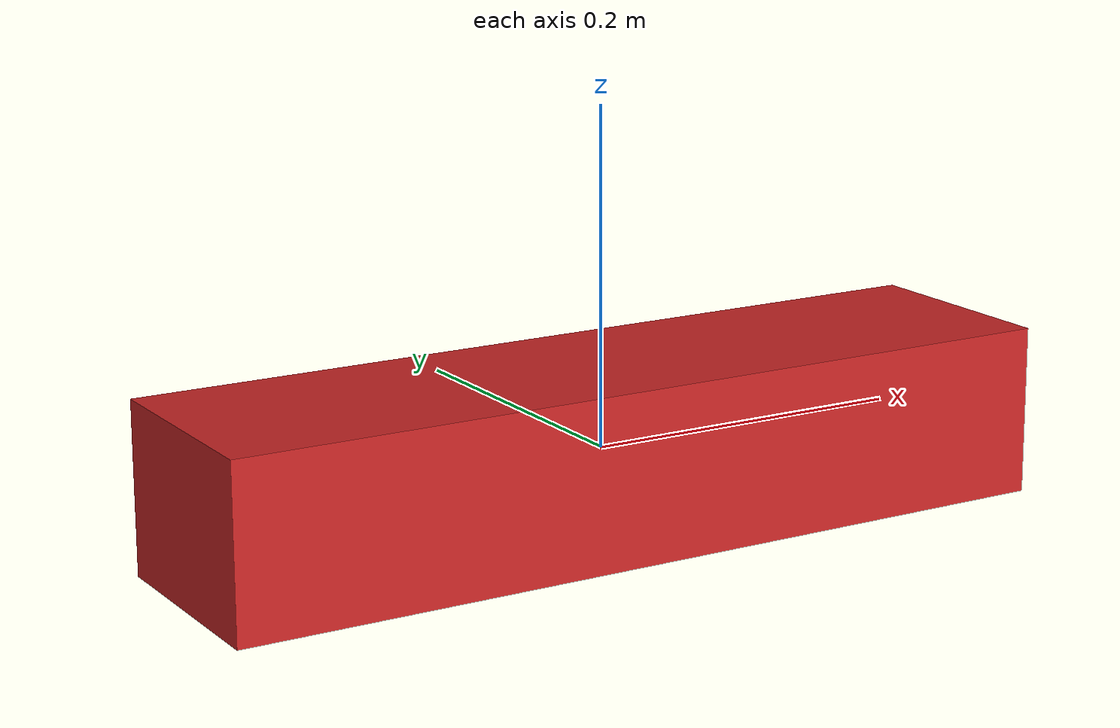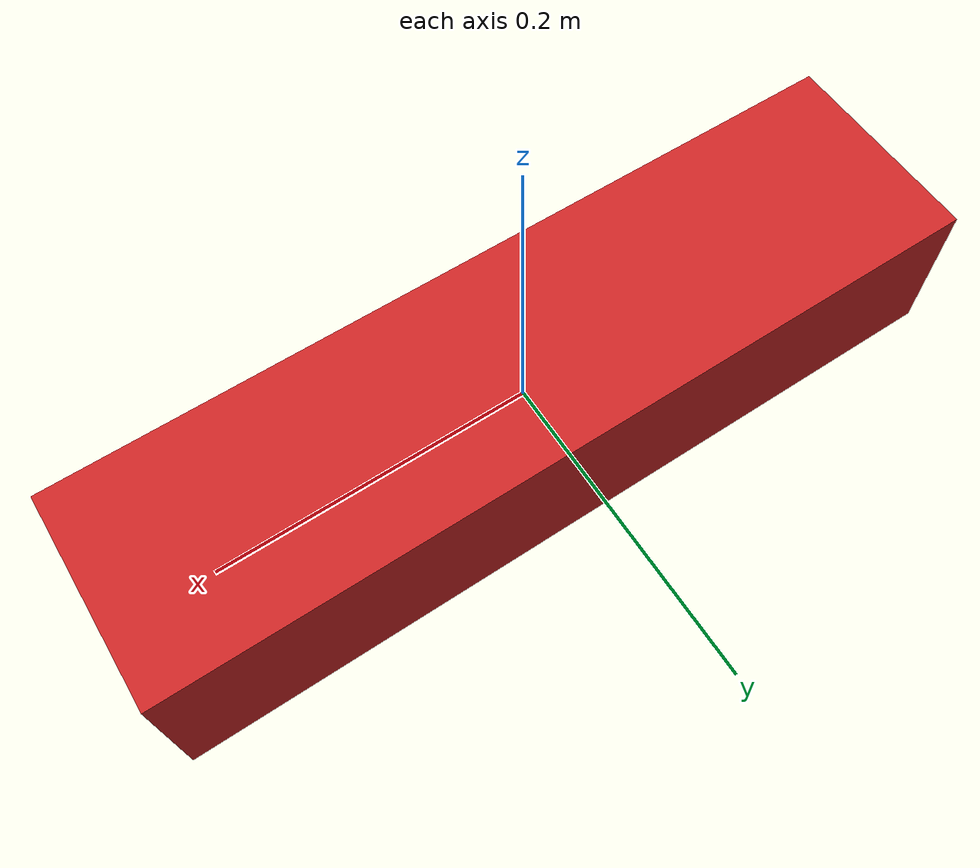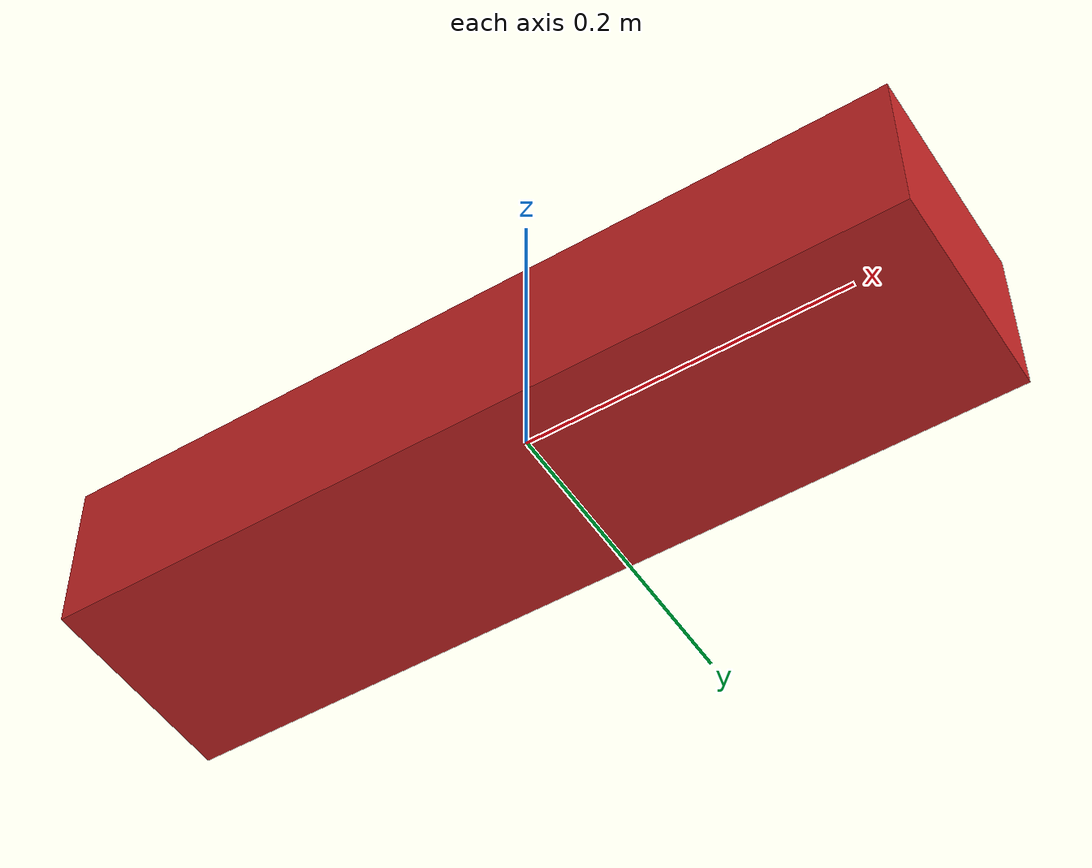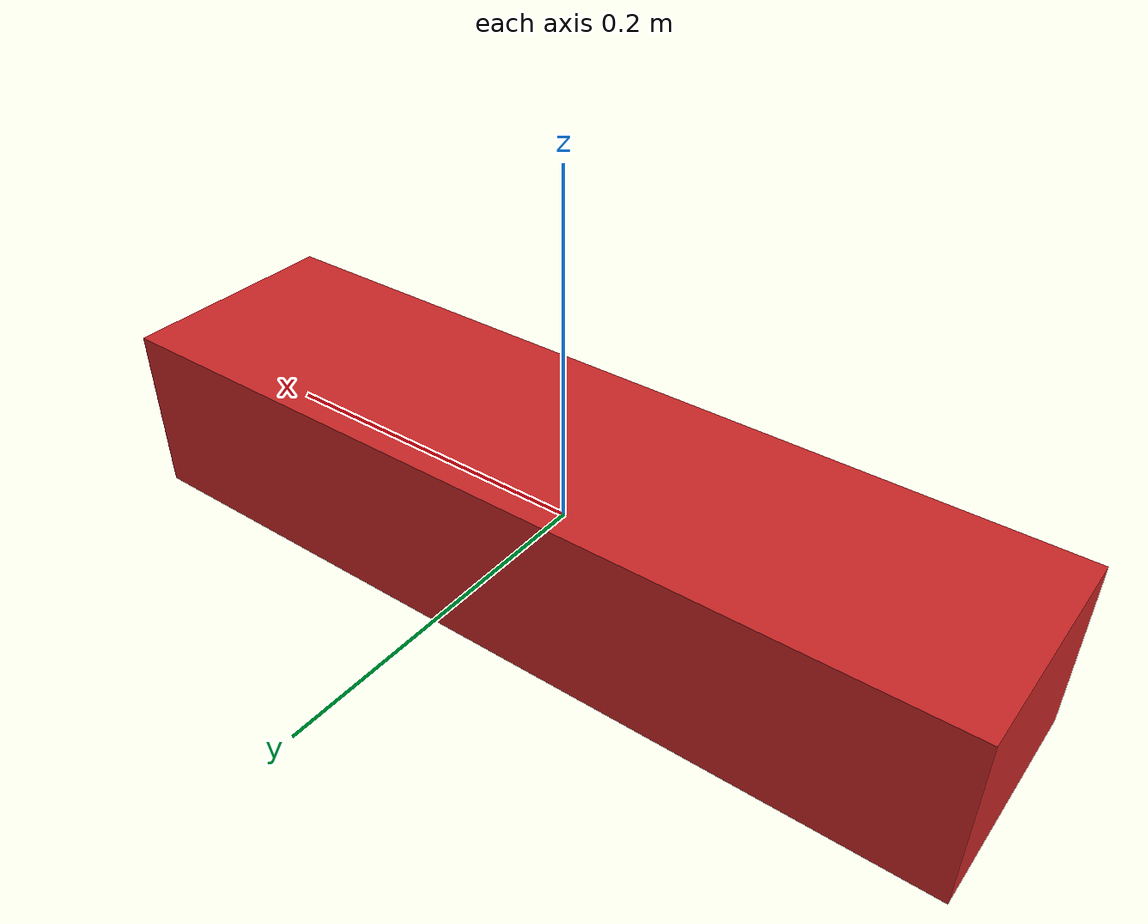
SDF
<?xml version='1.0'?>
<sdf version='1.7'>
  <model name='camera'>
    <link name='link_0'>

      <inertial>
        <mass>0.00707571</mass>
        <inertia>
          <ixx>1.66494e-05</ixx>
          <ixy>0</ixy>
          <ixz>0</ixz>
          <iyy>0.000165453</iyy>
          <iyz>0</iyz>
          <izz>0.000169817</izz>
        </inertia>
        <pose>0 0 0 0 -0 0</pose>
      </inertial>
      <pose>-0 -0 0 0 -0 0</pose>
      <visual name='visual'>
        <pose>0 0 0 0 -0 0</pose>
        <geometry>
          <box>
            <size>0.519789 0.133487 0.102067</size>
          </box>
        </geometry>
        <material>
          <lighting>1</lighting>
          <script>
            <uri>file://media/materials/scripts/gazebo.material</uri>
            <name>Gazebo/Red</name>
          </script>
          <shader type='pixel'/>
        </material>
        <transparency>0</transparency>
        <cast_shadows>1</cast_shadows>
      </visual>
      <collision name='collision'>
        <laser_retro>0</laser_retro>
        <max_contacts>10</max_contacts>
        <pose>0 0 0 0 -0 0</pose>
        <geometry>
          <box>
            <size>0.519789 0.133487 0.102067</size>
          </box>
        </geometry>
        <surface>
          <friction>
            <ode>
              <mu>1</mu>
              <mu2>1</mu2>
              <fdir1>0 0 0</fdir1>
              <slip1>0</slip1>
              <slip2>0</slip2>
            </ode>
            <torsional>
              <coefficient>1</coefficient>
              <patch_radius>0</patch_radius>
              <surface_radius>0</surface_radius>
              <use_patch_radius>1</use_patch_radius>
              <ode>
                <slip>0</slip>
              </ode>
            </torsional>
          </friction>
          <bounce>
            <restitution_coefficient>0</restitution_coefficient>
            <threshold>1e+06</threshold>
          </bounce>
          <contact>
            <collide_without_contact>0</collide_without_contact>
            <collide_without_contact_bitmask>1</collide_without_contact_bitmask>
            <collide_bitmask>1</collide_bitmask>
            <ode>
              <soft_cfm>0</soft_cfm>
              <soft_erp>0.2</soft_erp>
              <kp>1e+13</kp>
              <kd>1</kd>
              <max_vel>0.01</max_vel>
              <min_depth>0</min_depth>
            </ode>
            <bullet>
              <split_impulse>1</split_impulse>
              <split_impulse_penetration_threshold>-0.01</split_impulse_penetration_threshold>
              <soft_cfm>0</soft_cfm>
              <soft_erp>0.2</soft_erp>
              <kp>1e+13</kp>
              <kd>1</kd>
            </bullet>
          </contact>
        </surface>
      </collision>

    <sensor name='camera' type='camera'>
      <pose> 0 0 0 0 1.57 0</pose>
        <always_on>1</always_on>
        <visualize>1</visualize>
        <update_rate>30</update_rate>

        <camera name='Maze_Upper_Camera'>
          <horizontal_fov>1.0856</horizontal_fov>

          <image>
            <width>1280</width>
            <height>720</height>
            <format>R8G8B8</format>
          </image>

          <clip>
            <near>0.03</near>
            <far>100</far>
          </clip>
          <noise>
            <type>gaussian</type>
            <mean>0</mean>
            <stddev>0.007</stddev>
          </noise>
        </camera>
        <plugin name='camera_driver' filename='libgazebo_ros_camera.so'/>
      </sensor>

    </link>
    <static>1</static>
    <allow_auto_disable>1</allow_auto_disable>
  </model>
</sdf>
